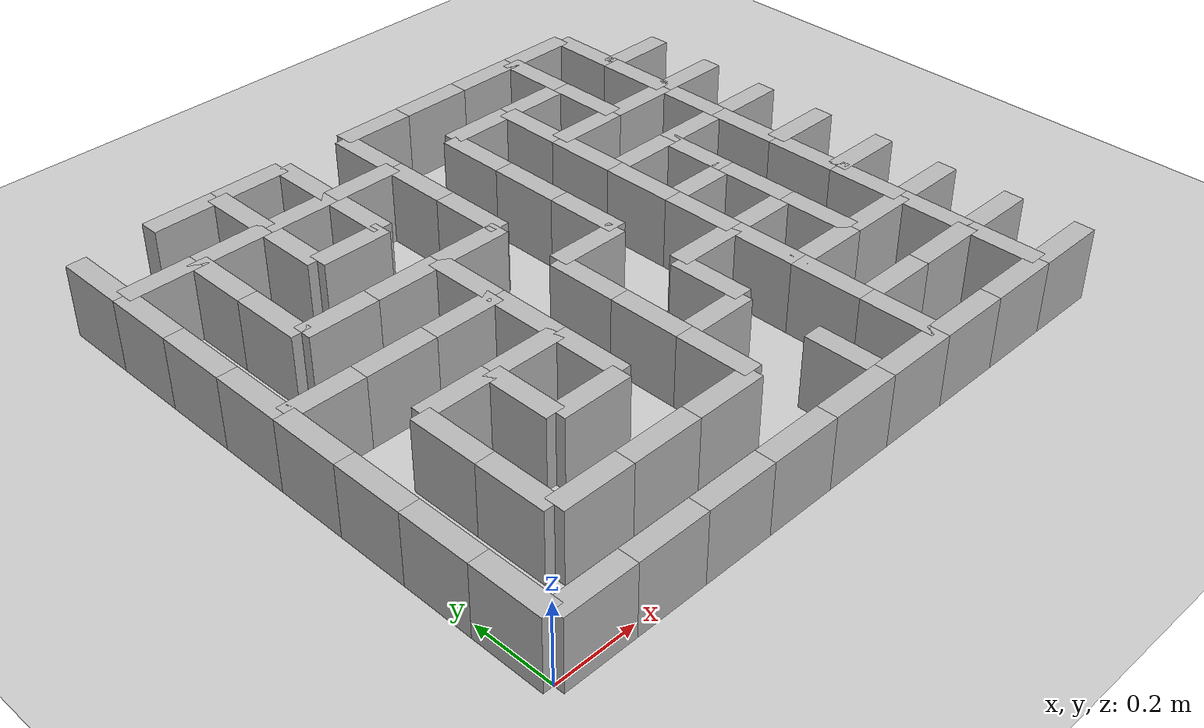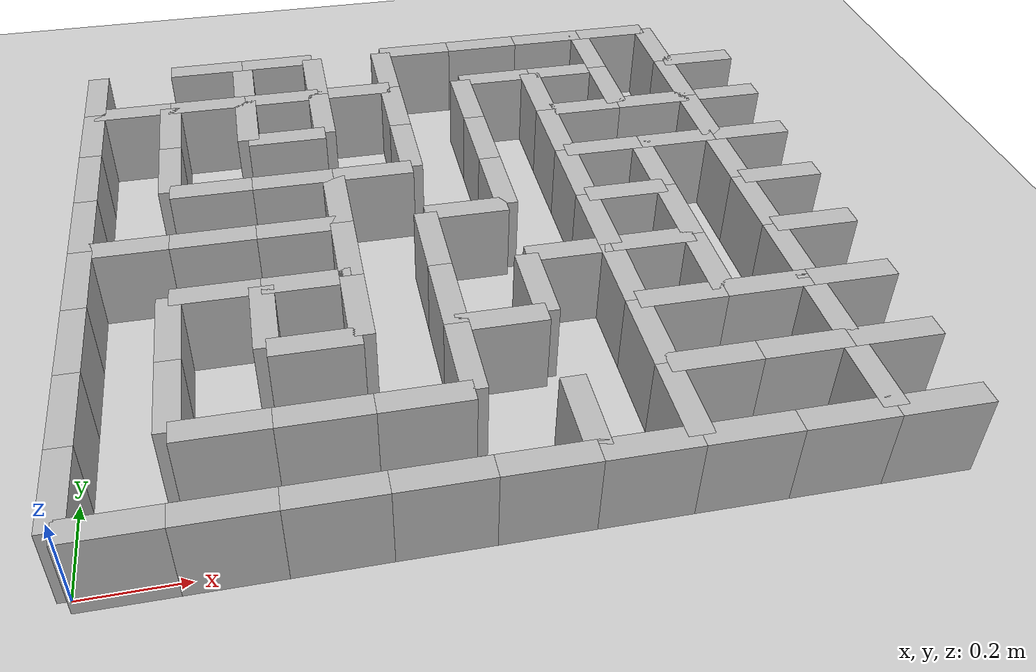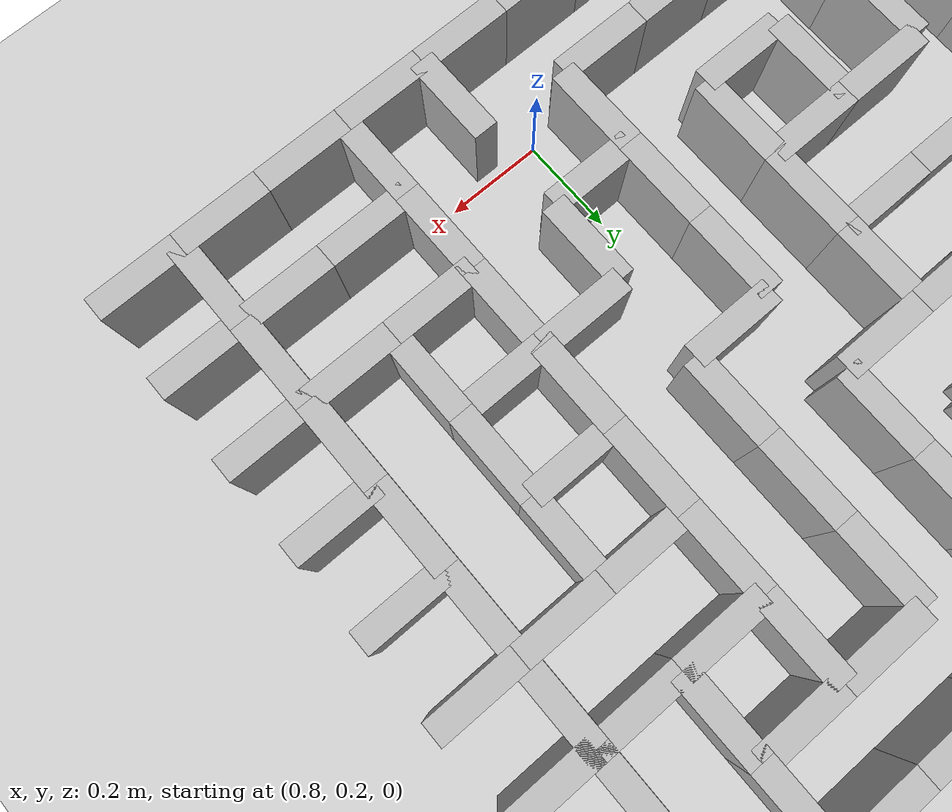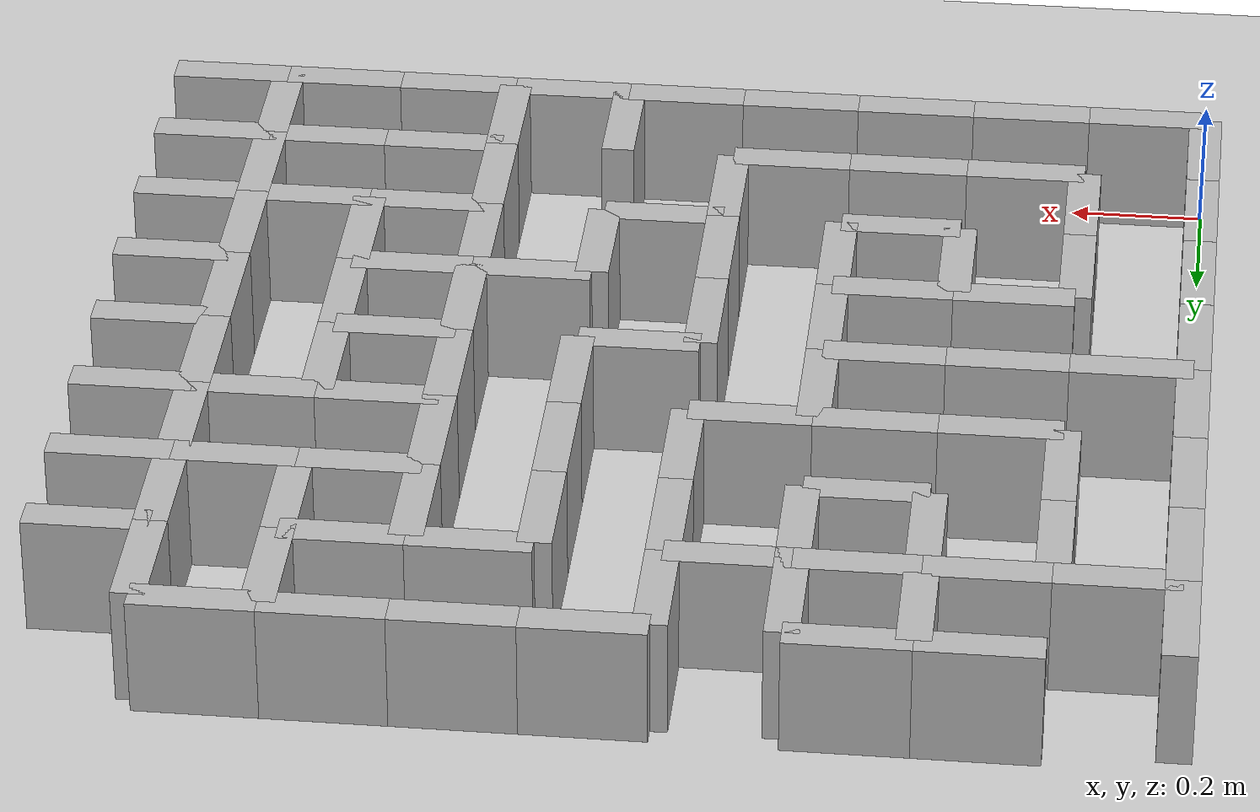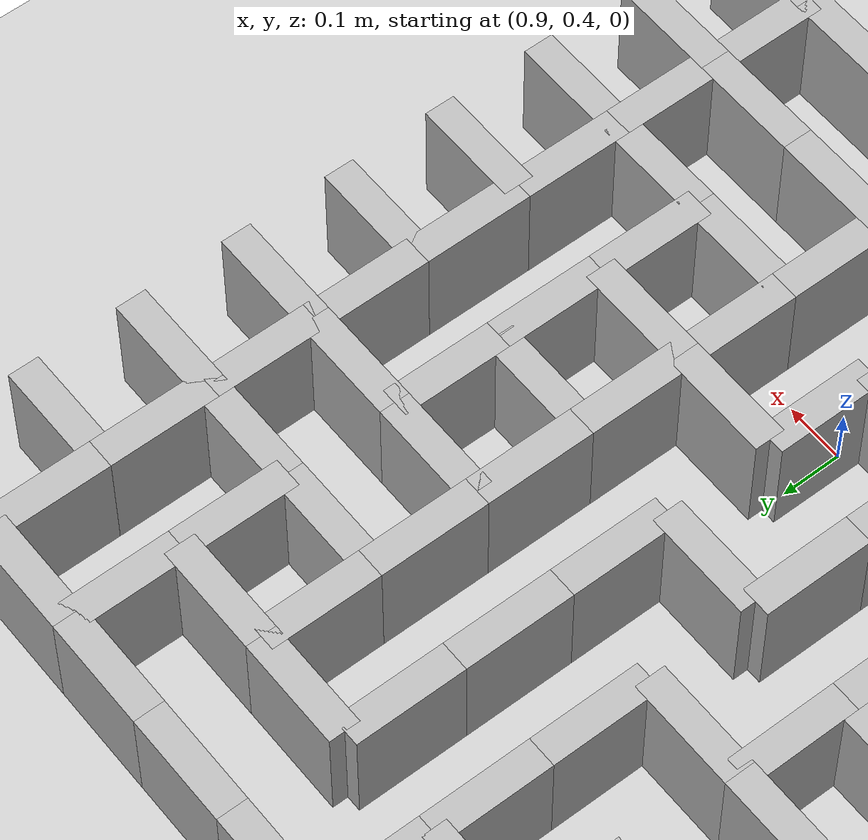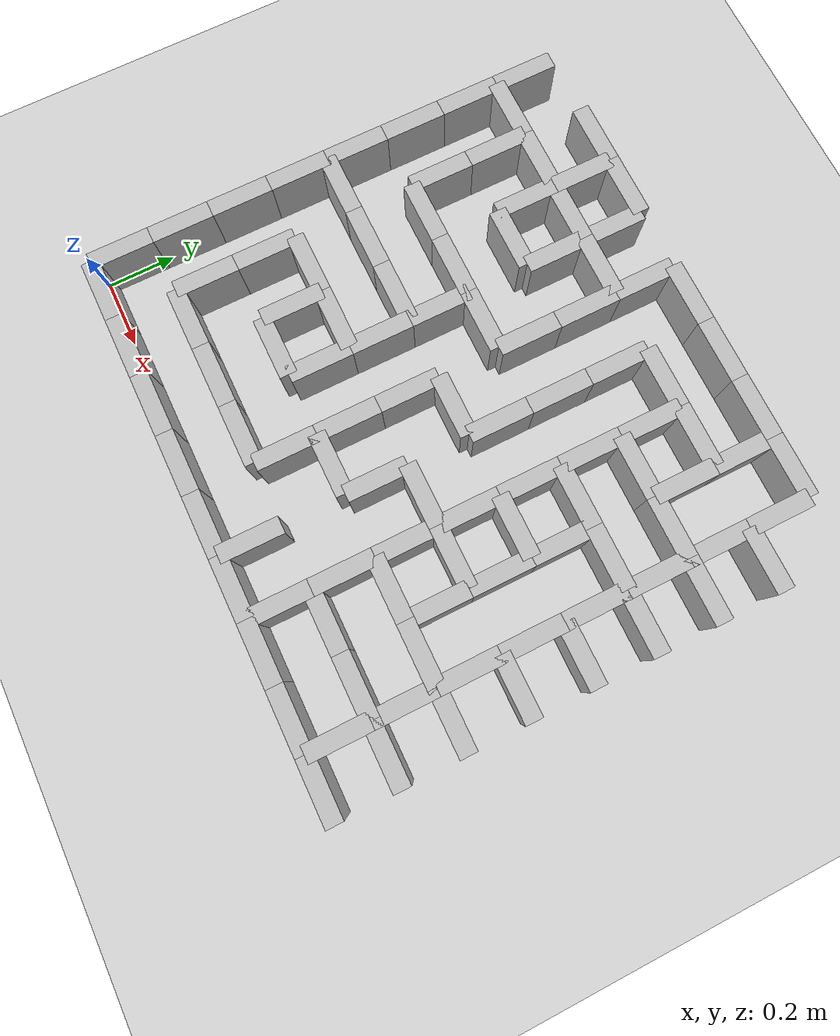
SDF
<sdf version="1.6">
 <world name="default">
  <model name="ground_plane">
   <static>1</static>
   <link name="link">
    <collision name="collision">
     <geometry><plane><normal>0 0 1</normal><size>100 100</size></plane></geometry>
     <surface><friction><ode><mu>100</mu><mu2>50</mu2></ode></friction></surface>
    </collision>
    <visual name="visual">
     <cast_shadows>0</cast_shadows>
     <geometry><plane><normal>0 0 1</normal><size>100 100</size></plane></geometry>
     <material>
      <script><uri>file://media/materials/scripts/gazebo.material</uri><name>Gazebo/Grey</name></script>
     </material>
    </visual>
   </link>
  </model>
  <model name="labyrinth_wall0">
   <pose>0.090000 0.000000 0.09 0 0 0.000000</pose>
   <link name="link">
    <inertial><mass>3.0</mass></inertial>
    <collision name="collision"><geometry><box><size>0.180 0.050 0.180</size></box></geometry></collision>
    <visual name="visual"><geometry><box><size>0.180 0.050 0.180</size></box></geometry></visual>
   </link>
   <static>true</static>
  </model>
  <model name="labyrinth_wall2">
   <pose>0.000000 0.090000 0.09 0 0 1.570796</pose>
   <link name="link">
    <inertial><mass>3.0</mass></inertial>
    <collision name="collision"><geometry><box><size>0.180 0.050 0.180</size></box></geometry></collision>
    <visual name="visual"><geometry><box><size>0.180 0.050 0.180</size></box></geometry></visual>
   </link>
   <static>true</static>
  </model>
  <model name="labyrinth_wall3">
   <pose>0.270000 0.000000 0.09 0 0 0.000000</pose>
   <link name="link">
    <inertial><mass>3.0</mass></inertial>
    <collision name="collision"><geometry><box><size>0.180 0.050 0.180</size></box></geometry></collision>
    <visual name="visual"><geometry><box><size>0.180 0.050 0.180</size></box></geometry></visual>
   </link>
   <static>true</static>
  </model>
  <model name="labyrinth_wall5">
   <pose>0.450000 0.000000 0.09 0 0 0.000000</pose>
   <link name="link">
    <inertial><mass>3.0</mass></inertial>
    <collision name="collision"><geometry><box><size>0.180 0.050 0.180</size></box></geometry></collision>
    <visual name="visual"><geometry><box><size>0.180 0.050 0.180</size></box></geometry></visual>
   </link>
   <static>true</static>
  </model>
  <model name="labyrinth_wall7">
   <pose>0.630000 0.000000 0.09 0 0 0.000000</pose>
   <link name="link">
    <inertial><mass>3.0</mass></inertial>
    <collision name="collision"><geometry><box><size>0.180 0.050 0.180</size></box></geometry></collision>
    <visual name="visual"><geometry><box><size>0.180 0.050 0.180</size></box></geometry></visual>
   </link>
   <static>true</static>
  </model>
  <model name="labyrinth_wall9">
   <pose>0.810000 0.000000 0.09 0 0 0.000000</pose>
   <link name="link">
    <inertial><mass>3.0</mass></inertial>
    <collision name="collision"><geometry><box><size>0.180 0.050 0.180</size></box></geometry></collision>
    <visual name="visual"><geometry><box><size>0.180 0.050 0.180</size></box></geometry></visual>
   </link>
   <static>true</static>
  </model>
  <model name="labyrinth_wall10">
   <pose>0.900000 0.090000 0.09 0 0 1.570796</pose>
   <link name="link">
    <inertial><mass>3.0</mass></inertial>
    <collision name="collision"><geometry><box><size>0.180 0.050 0.180</size></box></geometry></collision>
    <visual name="visual"><geometry><box><size>0.180 0.050 0.180</size></box></geometry></visual>
   </link>
   <static>true</static>
  </model>
  <model name="labyrinth_wall11">
   <pose>0.990000 0.000000 0.09 0 0 0.000000</pose>
   <link name="link">
    <inertial><mass>3.0</mass></inertial>
    <collision name="collision"><geometry><box><size>0.180 0.050 0.180</size></box></geometry></collision>
    <visual name="visual"><geometry><box><size>0.180 0.050 0.180</size></box></geometry></visual>
   </link>
   <static>true</static>
  </model>
  <model name="labyrinth_wall12">
   <pose>1.080000 0.090000 0.09 0 0 1.570796</pose>
   <link name="link">
    <inertial><mass>3.0</mass></inertial>
    <collision name="collision"><geometry><box><size>0.180 0.050 0.180</size></box></geometry></collision>
    <visual name="visual"><geometry><box><size>0.180 0.050 0.180</size></box></geometry></visual>
   </link>
   <static>true</static>
  </model>
  <model name="labyrinth_wall13">
   <pose>1.170000 0.000000 0.09 0 0 0.000000</pose>
   <link name="link">
    <inertial><mass>3.0</mass></inertial>
    <collision name="collision"><geometry><box><size>0.180 0.050 0.180</size></box></geometry></collision>
    <visual name="visual"><geometry><box><size>0.180 0.050 0.180</size></box></geometry></visual>
   </link>
   <static>true</static>
  </model>
  <model name="labyrinth_wall15">
   <pose>1.350000 0.000000 0.09 0 0 0.000000</pose>
   <link name="link">
    <inertial><mass>3.0</mass></inertial>
    <collision name="collision"><geometry><box><size>0.180 0.050 0.180</size></box></geometry></collision>
    <visual name="visual"><geometry><box><size>0.180 0.050 0.180</size></box></geometry></visual>
   </link>
   <static>true</static>
  </model>
  <model name="labyrinth_wall16">
   <pose>1.440000 0.090000 0.09 0 0 1.570796</pose>
   <link name="link">
    <inertial><mass>3.0</mass></inertial>
    <collision name="collision"><geometry><box><size>0.180 0.050 0.180</size></box></geometry></collision>
    <visual name="visual"><geometry><box><size>0.180 0.050 0.180</size></box></geometry></visual>
   </link>
   <static>true</static>
  </model>
  <model name="labyrinth_wall17">
   <pose>1.530000 0.000000 0.09 0 0 0.000000</pose>
   <link name="link">
    <inertial><mass>3.0</mass></inertial>
    <collision name="collision"><geometry><box><size>0.180 0.050 0.180</size></box></geometry></collision>
    <visual name="visual"><geometry><box><size>0.180 0.050 0.180</size></box></geometry></visual>
   </link>
   <static>true</static>
  </model>
  <model name="labyrinth_wall34">
   <pose>0.180000 0.270000 0.09 0 0 1.570796</pose>
   <link name="link">
    <inertial><mass>3.0</mass></inertial>
    <collision name="collision"><geometry><box><size>0.180 0.050 0.180</size></box></geometry></collision>
    <visual name="visual"><geometry><box><size>0.180 0.050 0.180</size></box></geometry></visual>
   </link>
   <static>true</static>
  </model>
  <model name="labyrinth_wall35">
   <pose>0.000000 0.270000 0.09 0 0 1.570796</pose>
   <link name="link">
    <inertial><mass>3.0</mass></inertial>
    <collision name="collision"><geometry><box><size>0.180 0.050 0.180</size></box></geometry></collision>
    <visual name="visual"><geometry><box><size>0.180 0.050 0.180</size></box></geometry></visual>
   </link>
   <static>true</static>
  </model>
  <model name="labyrinth_wall36">
   <pose>0.270000 0.180000 0.09 0 0 0.000000</pose>
   <link name="link">
    <inertial><mass>3.0</mass></inertial>
    <collision name="collision"><geometry><box><size>0.180 0.050 0.180</size></box></geometry></collision>
    <visual name="visual"><geometry><box><size>0.180 0.050 0.180</size></box></geometry></visual>
   </link>
   <static>true</static>
  </model>
  <model name="labyrinth_wall38">
   <pose>0.450000 0.180000 0.09 0 0 0.000000</pose>
   <link name="link">
    <inertial><mass>3.0</mass></inertial>
    <collision name="collision"><geometry><box><size>0.180 0.050 0.180</size></box></geometry></collision>
    <visual name="visual"><geometry><box><size>0.180 0.050 0.180</size></box></geometry></visual>
   </link>
   <static>true</static>
  </model>
  <model name="labyrinth_wall40">
   <pose>0.630000 0.180000 0.09 0 0 0.000000</pose>
   <link name="link">
    <inertial><mass>3.0</mass></inertial>
    <collision name="collision"><geometry><box><size>0.180 0.050 0.180</size></box></geometry></collision>
    <visual name="visual"><geometry><box><size>0.180 0.050 0.180</size></box></geometry></visual>
   </link>
   <static>true</static>
  </model>
  <model name="labyrinth_wall41">
   <pose>0.720000 0.270000 0.09 0 0 1.570796</pose>
   <link name="link">
    <inertial><mass>3.0</mass></inertial>
    <collision name="collision"><geometry><box><size>0.180 0.050 0.180</size></box></geometry></collision>
    <visual name="visual"><geometry><box><size>0.180 0.050 0.180</size></box></geometry></visual>
   </link>
   <static>true</static>
  </model>
  <model name="labyrinth_wall45">
   <pose>1.080000 0.270000 0.09 0 0 1.570796</pose>
   <link name="link">
    <inertial><mass>3.0</mass></inertial>
    <collision name="collision"><geometry><box><size>0.180 0.050 0.180</size></box></geometry></collision>
    <visual name="visual"><geometry><box><size>0.180 0.050 0.180</size></box></geometry></visual>
   </link>
   <static>true</static>
  </model>
  <model name="labyrinth_wall46">
   <pose>1.170000 0.180000 0.09 0 0 0.000000</pose>
   <link name="link">
    <inertial><mass>3.0</mass></inertial>
    <collision name="collision"><geometry><box><size>0.180 0.050 0.180</size></box></geometry></collision>
    <visual name="visual"><geometry><box><size>0.180 0.050 0.180</size></box></geometry></visual>
   </link>
   <static>true</static>
  </model>
  <model name="labyrinth_wall48">
   <pose>1.350000 0.180000 0.09 0 0 0.000000</pose>
   <link name="link">
    <inertial><mass>3.0</mass></inertial>
    <collision name="collision"><geometry><box><size>0.180 0.050 0.180</size></box></geometry></collision>
    <visual name="visual"><geometry><box><size>0.180 0.050 0.180</size></box></geometry></visual>
   </link>
   <static>true</static>
  </model>
  <model name="labyrinth_wall49">
   <pose>1.440000 0.270000 0.09 0 0 1.570796</pose>
   <link name="link">
    <inertial><mass>3.0</mass></inertial>
    <collision name="collision"><geometry><box><size>0.180 0.050 0.180</size></box></geometry></collision>
    <visual name="visual"><geometry><box><size>0.180 0.050 0.180</size></box></geometry></visual>
   </link>
   <static>true</static>
  </model>
  <model name="labyrinth_wall50">
   <pose>1.530000 0.180000 0.09 0 0 0.000000</pose>
   <link name="link">
    <inertial><mass>3.0</mass></inertial>
    <collision name="collision"><geometry><box><size>0.180 0.050 0.180</size></box></geometry></collision>
    <visual name="visual"><geometry><box><size>0.180 0.050 0.180</size></box></geometry></visual>
   </link>
   <static>true</static>
  </model>
  <model name="labyrinth_wall67">
   <pose>0.180000 0.450000 0.09 0 0 1.570796</pose>
   <link name="link">
    <inertial><mass>3.0</mass></inertial>
    <collision name="collision"><geometry><box><size>0.180 0.050 0.180</size></box></geometry></collision>
    <visual name="visual"><geometry><box><size>0.180 0.050 0.180</size></box></geometry></visual>
   </link>
   <static>true</static>
  </model>
  <model name="labyrinth_wall68">
   <pose>0.000000 0.450000 0.09 0 0 1.570796</pose>
   <link name="link">
    <inertial><mass>3.0</mass></inertial>
    <collision name="collision"><geometry><box><size>0.180 0.050 0.180</size></box></geometry></collision>
    <visual name="visual"><geometry><box><size>0.180 0.050 0.180</size></box></geometry></visual>
   </link>
   <static>true</static>
  </model>
  <model name="labyrinth_wall70">
   <pose>0.360000 0.450000 0.09 0 0 1.570796</pose>
   <link name="link">
    <inertial><mass>3.0</mass></inertial>
    <collision name="collision"><geometry><box><size>0.180 0.050 0.180</size></box></geometry></collision>
    <visual name="visual"><geometry><box><size>0.180 0.050 0.180</size></box></geometry></visual>
   </link>
   <static>true</static>
  </model>
  <model name="labyrinth_wall71">
   <pose>0.450000 0.360000 0.09 0 0 0.000000</pose>
   <link name="link">
    <inertial><mass>3.0</mass></inertial>
    <collision name="collision"><geometry><box><size>0.180 0.050 0.180</size></box></geometry></collision>
    <visual name="visual"><geometry><box><size>0.180 0.050 0.180</size></box></geometry></visual>
   </link>
   <static>true</static>
  </model>
  <model name="labyrinth_wall72">
   <pose>0.540000 0.450000 0.09 0 0 1.570796</pose>
   <link name="link">
    <inertial><mass>3.0</mass></inertial>
    <collision name="collision"><geometry><box><size>0.180 0.050 0.180</size></box></geometry></collision>
    <visual name="visual"><geometry><box><size>0.180 0.050 0.180</size></box></geometry></visual>
   </link>
   <static>true</static>
  </model>
  <model name="labyrinth_wall74">
   <pose>0.720000 0.450000 0.09 0 0 1.570796</pose>
   <link name="link">
    <inertial><mass>3.0</mass></inertial>
    <collision name="collision"><geometry><box><size>0.180 0.050 0.180</size></box></geometry></collision>
    <visual name="visual"><geometry><box><size>0.180 0.050 0.180</size></box></geometry></visual>
   </link>
   <static>true</static>
  </model>
  <model name="labyrinth_wall75">
   <pose>0.810000 0.360000 0.09 0 0 0.000000</pose>
   <link name="link">
    <inertial><mass>3.0</mass></inertial>
    <collision name="collision"><geometry><box><size>0.180 0.050 0.180</size></box></geometry></collision>
    <visual name="visual"><geometry><box><size>0.180 0.050 0.180</size></box></geometry></visual>
   </link>
   <static>true</static>
  </model>
  <model name="labyrinth_wall76">
   <pose>0.900000 0.450000 0.09 0 0 1.570796</pose>
   <link name="link">
    <inertial><mass>3.0</mass></inertial>
    <collision name="collision"><geometry><box><size>0.180 0.050 0.180</size></box></geometry></collision>
    <visual name="visual"><geometry><box><size>0.180 0.050 0.180</size></box></geometry></visual>
   </link>
   <static>true</static>
  </model>
  <model name="labyrinth_wall78">
   <pose>1.080000 0.450000 0.09 0 0 1.570796</pose>
   <link name="link">
    <inertial><mass>3.0</mass></inertial>
    <collision name="collision"><geometry><box><size>0.180 0.050 0.180</size></box></geometry></collision>
    <visual name="visual"><geometry><box><size>0.180 0.050 0.180</size></box></geometry></visual>
   </link>
   <static>true</static>
  </model>
  <model name="labyrinth_wall79">
   <pose>1.170000 0.360000 0.09 0 0 0.000000</pose>
   <link name="link">
    <inertial><mass>3.0</mass></inertial>
    <collision name="collision"><geometry><box><size>0.180 0.050 0.180</size></box></geometry></collision>
    <visual name="visual"><geometry><box><size>0.180 0.050 0.180</size></box></geometry></visual>
   </link>
   <static>true</static>
  </model>
  <model name="labyrinth_wall80">
   <pose>1.260000 0.450000 0.09 0 0 1.570796</pose>
   <link name="link">
    <inertial><mass>3.0</mass></inertial>
    <collision name="collision"><geometry><box><size>0.180 0.050 0.180</size></box></geometry></collision>
    <visual name="visual"><geometry><box><size>0.180 0.050 0.180</size></box></geometry></visual>
   </link>
   <static>true</static>
  </model>
  <model name="labyrinth_wall81">
   <pose>1.350000 0.360000 0.09 0 0 0.000000</pose>
   <link name="link">
    <inertial><mass>3.0</mass></inertial>
    <collision name="collision"><geometry><box><size>0.180 0.050 0.180</size></box></geometry></collision>
    <visual name="visual"><geometry><box><size>0.180 0.050 0.180</size></box></geometry></visual>
   </link>
   <static>true</static>
  </model>
  <model name="labyrinth_wall82">
   <pose>1.440000 0.450000 0.09 0 0 1.570796</pose>
   <link name="link">
    <inertial><mass>3.0</mass></inertial>
    <collision name="collision"><geometry><box><size>0.180 0.050 0.180</size></box></geometry></collision>
    <visual name="visual"><geometry><box><size>0.180 0.050 0.180</size></box></geometry></visual>
   </link>
   <static>true</static>
  </model>
  <model name="labyrinth_wall83">
   <pose>1.530000 0.360000 0.09 0 0 0.000000</pose>
   <link name="link">
    <inertial><mass>3.0</mass></inertial>
    <collision name="collision"><geometry><box><size>0.180 0.050 0.180</size></box></geometry></collision>
    <visual name="visual"><geometry><box><size>0.180 0.050 0.180</size></box></geometry></visual>
   </link>
   <static>true</static>
  </model>
  <model name="labyrinth_wall101">
   <pose>0.000000 0.630000 0.09 0 0 1.570796</pose>
   <link name="link">
    <inertial><mass>3.0</mass></inertial>
    <collision name="collision"><geometry><box><size>0.180 0.050 0.180</size></box></geometry></collision>
    <visual name="visual"><geometry><box><size>0.180 0.050 0.180</size></box></geometry></visual>
   </link>
   <static>true</static>
  </model>
  <model name="labyrinth_wall102">
   <pose>0.270000 0.540000 0.09 0 0 0.000000</pose>
   <link name="link">
    <inertial><mass>3.0</mass></inertial>
    <collision name="collision"><geometry><box><size>0.180 0.050 0.180</size></box></geometry></collision>
    <visual name="visual"><geometry><box><size>0.180 0.050 0.180</size></box></geometry></visual>
   </link>
   <static>true</static>
  </model>
  <model name="labyrinth_wall104">
   <pose>0.450000 0.540000 0.09 0 0 0.000000</pose>
   <link name="link">
    <inertial><mass>3.0</mass></inertial>
    <collision name="collision"><geometry><box><size>0.180 0.050 0.180</size></box></geometry></collision>
    <visual name="visual"><geometry><box><size>0.180 0.050 0.180</size></box></geometry></visual>
   </link>
   <static>true</static>
  </model>
  <model name="labyrinth_wall105">
   <pose>0.540000 0.630000 0.09 0 0 1.570796</pose>
   <link name="link">
    <inertial><mass>3.0</mass></inertial>
    <collision name="collision"><geometry><box><size>0.180 0.050 0.180</size></box></geometry></collision>
    <visual name="visual"><geometry><box><size>0.180 0.050 0.180</size></box></geometry></visual>
   </link>
   <static>true</static>
  </model>
  <model name="labyrinth_wall107">
   <pose>0.720000 0.630000 0.09 0 0 1.570796</pose>
   <link name="link">
    <inertial><mass>3.0</mass></inertial>
    <collision name="collision"><geometry><box><size>0.180 0.050 0.180</size></box></geometry></collision>
    <visual name="visual"><geometry><box><size>0.180 0.050 0.180</size></box></geometry></visual>
   </link>
   <static>true</static>
  </model>
  <model name="labyrinth_wall110">
   <pose>0.990000 0.540000 0.09 0 0 0.000000</pose>
   <link name="link">
    <inertial><mass>3.0</mass></inertial>
    <collision name="collision"><geometry><box><size>0.180 0.050 0.180</size></box></geometry></collision>
    <visual name="visual"><geometry><box><size>0.180 0.050 0.180</size></box></geometry></visual>
   </link>
   <static>true</static>
  </model>
  <model name="labyrinth_wall111">
   <pose>1.080000 0.630000 0.09 0 0 1.570796</pose>
   <link name="link">
    <inertial><mass>3.0</mass></inertial>
    <collision name="collision"><geometry><box><size>0.180 0.050 0.180</size></box></geometry></collision>
    <visual name="visual"><geometry><box><size>0.180 0.050 0.180</size></box></geometry></visual>
   </link>
   <static>true</static>
  </model>
  <model name="labyrinth_wall112">
   <pose>1.170000 0.540000 0.09 0 0 0.000000</pose>
   <link name="link">
    <inertial><mass>3.0</mass></inertial>
    <collision name="collision"><geometry><box><size>0.180 0.050 0.180</size></box></geometry></collision>
    <visual name="visual"><geometry><box><size>0.180 0.050 0.180</size></box></geometry></visual>
   </link>
   <static>true</static>
  </model>
  <model name="labyrinth_wall113">
   <pose>1.260000 0.630000 0.09 0 0 1.570796</pose>
   <link name="link">
    <inertial><mass>3.0</mass></inertial>
    <collision name="collision"><geometry><box><size>0.180 0.050 0.180</size></box></geometry></collision>
    <visual name="visual"><geometry><box><size>0.180 0.050 0.180</size></box></geometry></visual>
   </link>
   <static>true</static>
  </model>
  <model name="labyrinth_wall115">
   <pose>1.440000 0.630000 0.09 0 0 1.570796</pose>
   <link name="link">
    <inertial><mass>3.0</mass></inertial>
    <collision name="collision"><geometry><box><size>0.180 0.050 0.180</size></box></geometry></collision>
    <visual name="visual"><geometry><box><size>0.180 0.050 0.180</size></box></geometry></visual>
   </link>
   <static>true</static>
  </model>
  <model name="labyrinth_wall116">
   <pose>1.530000 0.540000 0.09 0 0 0.000000</pose>
   <link name="link">
    <inertial><mass>3.0</mass></inertial>
    <collision name="collision"><geometry><box><size>0.180 0.050 0.180</size></box></geometry></collision>
    <visual name="visual"><geometry><box><size>0.180 0.050 0.180</size></box></geometry></visual>
   </link>
   <static>true</static>
  </model>
  <model name="labyrinth_wall132">
   <pose>0.090000 0.720000 0.09 0 0 0.000000</pose>
   <link name="link">
    <inertial><mass>3.0</mass></inertial>
    <collision name="collision"><geometry><box><size>0.180 0.050 0.180</size></box></geometry></collision>
    <visual name="visual"><geometry><box><size>0.180 0.050 0.180</size></box></geometry></visual>
   </link>
   <static>true</static>
  </model>
  <model name="labyrinth_wall134">
   <pose>0.000000 0.810000 0.09 0 0 1.570796</pose>
   <link name="link">
    <inertial><mass>3.0</mass></inertial>
    <collision name="collision"><geometry><box><size>0.180 0.050 0.180</size></box></geometry></collision>
    <visual name="visual"><geometry><box><size>0.180 0.050 0.180</size></box></geometry></visual>
   </link>
   <static>true</static>
  </model>
  <model name="labyrinth_wall135">
   <pose>0.270000 0.720000 0.09 0 0 0.000000</pose>
   <link name="link">
    <inertial><mass>3.0</mass></inertial>
    <collision name="collision"><geometry><box><size>0.180 0.050 0.180</size></box></geometry></collision>
    <visual name="visual"><geometry><box><size>0.180 0.050 0.180</size></box></geometry></visual>
   </link>
   <static>true</static>
  </model>
  <model name="labyrinth_wall137">
   <pose>0.450000 0.720000 0.09 0 0 0.000000</pose>
   <link name="link">
    <inertial><mass>3.0</mass></inertial>
    <collision name="collision"><geometry><box><size>0.180 0.050 0.180</size></box></geometry></collision>
    <visual name="visual"><geometry><box><size>0.180 0.050 0.180</size></box></geometry></visual>
   </link>
   <static>true</static>
  </model>
  <model name="labyrinth_wall138">
   <pose>0.540000 0.810000 0.09 0 0 1.570796</pose>
   <link name="link">
    <inertial><mass>3.0</mass></inertial>
    <collision name="collision"><geometry><box><size>0.180 0.050 0.180</size></box></geometry></collision>
    <visual name="visual"><geometry><box><size>0.180 0.050 0.180</size></box></geometry></visual>
   </link>
   <static>true</static>
  </model>
  <model name="labyrinth_wall141">
   <pose>0.810000 0.720000 0.09 0 0 0.000000</pose>
   <link name="link">
    <inertial><mass>3.0</mass></inertial>
    <collision name="collision"><geometry><box><size>0.180 0.050 0.180</size></box></geometry></collision>
    <visual name="visual"><geometry><box><size>0.180 0.050 0.180</size></box></geometry></visual>
   </link>
   <static>true</static>
  </model>
  <model name="labyrinth_wall142">
   <pose>0.900000 0.810000 0.09 0 0 1.570796</pose>
   <link name="link">
    <inertial><mass>3.0</mass></inertial>
    <collision name="collision"><geometry><box><size>0.180 0.050 0.180</size></box></geometry></collision>
    <visual name="visual"><geometry><box><size>0.180 0.050 0.180</size></box></geometry></visual>
   </link>
   <static>true</static>
  </model>
  <model name="labyrinth_wall144">
   <pose>1.080000 0.810000 0.09 0 0 1.570796</pose>
   <link name="link">
    <inertial><mass>3.0</mass></inertial>
    <collision name="collision"><geometry><box><size>0.180 0.050 0.180</size></box></geometry></collision>
    <visual name="visual"><geometry><box><size>0.180 0.050 0.180</size></box></geometry></visual>
   </link>
   <static>true</static>
  </model>
  <model name="labyrinth_wall145">
   <pose>1.170000 0.720000 0.09 0 0 0.000000</pose>
   <link name="link">
    <inertial><mass>3.0</mass></inertial>
    <collision name="collision"><geometry><box><size>0.180 0.050 0.180</size></box></geometry></collision>
    <visual name="visual"><geometry><box><size>0.180 0.050 0.180</size></box></geometry></visual>
   </link>
   <static>true</static>
  </model>
  <model name="labyrinth_wall146">
   <pose>1.260000 0.810000 0.09 0 0 1.570796</pose>
   <link name="link">
    <inertial><mass>3.0</mass></inertial>
    <collision name="collision"><geometry><box><size>0.180 0.050 0.180</size></box></geometry></collision>
    <visual name="visual"><geometry><box><size>0.180 0.050 0.180</size></box></geometry></visual>
   </link>
   <static>true</static>
  </model>
  <model name="labyrinth_wall148">
   <pose>1.440000 0.810000 0.09 0 0 1.570796</pose>
   <link name="link">
    <inertial><mass>3.0</mass></inertial>
    <collision name="collision"><geometry><box><size>0.180 0.050 0.180</size></box></geometry></collision>
    <visual name="visual"><geometry><box><size>0.180 0.050 0.180</size></box></geometry></visual>
   </link>
   <static>true</static>
  </model>
  <model name="labyrinth_wall149">
   <pose>1.530000 0.720000 0.09 0 0 0.000000</pose>
   <link name="link">
    <inertial><mass>3.0</mass></inertial>
    <collision name="collision"><geometry><box><size>0.180 0.050 0.180</size></box></geometry></collision>
    <visual name="visual"><geometry><box><size>0.180 0.050 0.180</size></box></geometry></visual>
   </link>
   <static>true</static>
  </model>
  <model name="labyrinth_wall166">
   <pose>0.180000 0.990000 0.09 0 0 1.570796</pose>
   <link name="link">
    <inertial><mass>3.0</mass></inertial>
    <collision name="collision"><geometry><box><size>0.180 0.050 0.180</size></box></geometry></collision>
    <visual name="visual"><geometry><box><size>0.180 0.050 0.180</size></box></geometry></visual>
   </link>
   <static>true</static>
  </model>
  <model name="labyrinth_wall167">
   <pose>0.000000 0.990000 0.09 0 0 1.570796</pose>
   <link name="link">
    <inertial><mass>3.0</mass></inertial>
    <collision name="collision"><geometry><box><size>0.180 0.050 0.180</size></box></geometry></collision>
    <visual name="visual"><geometry><box><size>0.180 0.050 0.180</size></box></geometry></visual>
   </link>
   <static>true</static>
  </model>
  <model name="labyrinth_wall168">
   <pose>0.270000 0.900000 0.09 0 0 0.000000</pose>
   <link name="link">
    <inertial><mass>3.0</mass></inertial>
    <collision name="collision"><geometry><box><size>0.180 0.050 0.180</size></box></geometry></collision>
    <visual name="visual"><geometry><box><size>0.180 0.050 0.180</size></box></geometry></visual>
   </link>
   <static>true</static>
  </model>
  <model name="labyrinth_wall170">
   <pose>0.450000 0.900000 0.09 0 0 0.000000</pose>
   <link name="link">
    <inertial><mass>3.0</mass></inertial>
    <collision name="collision"><geometry><box><size>0.180 0.050 0.180</size></box></geometry></collision>
    <visual name="visual"><geometry><box><size>0.180 0.050 0.180</size></box></geometry></visual>
   </link>
   <static>true</static>
  </model>
  <model name="labyrinth_wall172">
   <pose>0.630000 0.900000 0.09 0 0 0.000000</pose>
   <link name="link">
    <inertial><mass>3.0</mass></inertial>
    <collision name="collision"><geometry><box><size>0.180 0.050 0.180</size></box></geometry></collision>
    <visual name="visual"><geometry><box><size>0.180 0.050 0.180</size></box></geometry></visual>
   </link>
   <static>true</static>
  </model>
  <model name="labyrinth_wall173">
   <pose>0.720000 0.990000 0.09 0 0 1.570796</pose>
   <link name="link">
    <inertial><mass>3.0</mass></inertial>
    <collision name="collision"><geometry><box><size>0.180 0.050 0.180</size></box></geometry></collision>
    <visual name="visual"><geometry><box><size>0.180 0.050 0.180</size></box></geometry></visual>
   </link>
   <static>true</static>
  </model>
  <model name="labyrinth_wall175">
   <pose>0.900000 0.990000 0.09 0 0 1.570796</pose>
   <link name="link">
    <inertial><mass>3.0</mass></inertial>
    <collision name="collision"><geometry><box><size>0.180 0.050 0.180</size></box></geometry></collision>
    <visual name="visual"><geometry><box><size>0.180 0.050 0.180</size></box></geometry></visual>
   </link>
   <static>true</static>
  </model>
  <model name="labyrinth_wall177">
   <pose>1.080000 0.990000 0.09 0 0 1.570796</pose>
   <link name="link">
    <inertial><mass>3.0</mass></inertial>
    <collision name="collision"><geometry><box><size>0.180 0.050 0.180</size></box></geometry></collision>
    <visual name="visual"><geometry><box><size>0.180 0.050 0.180</size></box></geometry></visual>
   </link>
   <static>true</static>
  </model>
  <model name="labyrinth_wall178">
   <pose>1.170000 0.900000 0.09 0 0 0.000000</pose>
   <link name="link">
    <inertial><mass>3.0</mass></inertial>
    <collision name="collision"><geometry><box><size>0.180 0.050 0.180</size></box></geometry></collision>
    <visual name="visual"><geometry><box><size>0.180 0.050 0.180</size></box></geometry></visual>
   </link>
   <static>true</static>
  </model>
  <model name="labyrinth_wall180">
   <pose>1.350000 0.900000 0.09 0 0 0.000000</pose>
   <link name="link">
    <inertial><mass>3.0</mass></inertial>
    <collision name="collision"><geometry><box><size>0.180 0.050 0.180</size></box></geometry></collision>
    <visual name="visual"><geometry><box><size>0.180 0.050 0.180</size></box></geometry></visual>
   </link>
   <static>true</static>
  </model>
  <model name="labyrinth_wall181">
   <pose>1.440000 0.990000 0.09 0 0 1.570796</pose>
   <link name="link">
    <inertial><mass>3.0</mass></inertial>
    <collision name="collision"><geometry><box><size>0.180 0.050 0.180</size></box></geometry></collision>
    <visual name="visual"><geometry><box><size>0.180 0.050 0.180</size></box></geometry></visual>
   </link>
   <static>true</static>
  </model>
  <model name="labyrinth_wall182">
   <pose>1.530000 0.900000 0.09 0 0 0.000000</pose>
   <link name="link">
    <inertial><mass>3.0</mass></inertial>
    <collision name="collision"><geometry><box><size>0.180 0.050 0.180</size></box></geometry></collision>
    <visual name="visual"><geometry><box><size>0.180 0.050 0.180</size></box></geometry></visual>
   </link>
   <static>true</static>
  </model>
  <model name="labyrinth_wall199">
   <pose>0.180000 1.170000 0.09 0 0 1.570796</pose>
   <link name="link">
    <inertial><mass>3.0</mass></inertial>
    <collision name="collision"><geometry><box><size>0.180 0.050 0.180</size></box></geometry></collision>
    <visual name="visual"><geometry><box><size>0.180 0.050 0.180</size></box></geometry></visual>
   </link>
   <static>true</static>
  </model>
  <model name="labyrinth_wall200">
   <pose>0.000000 1.170000 0.09 0 0 1.570796</pose>
   <link name="link">
    <inertial><mass>3.0</mass></inertial>
    <collision name="collision"><geometry><box><size>0.180 0.050 0.180</size></box></geometry></collision>
    <visual name="visual"><geometry><box><size>0.180 0.050 0.180</size></box></geometry></visual>
   </link>
   <static>true</static>
  </model>
  <model name="labyrinth_wall202">
   <pose>0.360000 1.170000 0.09 0 0 1.570796</pose>
   <link name="link">
    <inertial><mass>3.0</mass></inertial>
    <collision name="collision"><geometry><box><size>0.180 0.050 0.180</size></box></geometry></collision>
    <visual name="visual"><geometry><box><size>0.180 0.050 0.180</size></box></geometry></visual>
   </link>
   <static>true</static>
  </model>
  <model name="labyrinth_wall203">
   <pose>0.450000 1.080000 0.09 0 0 0.000000</pose>
   <link name="link">
    <inertial><mass>3.0</mass></inertial>
    <collision name="collision"><geometry><box><size>0.180 0.050 0.180</size></box></geometry></collision>
    <visual name="visual"><geometry><box><size>0.180 0.050 0.180</size></box></geometry></visual>
   </link>
   <static>true</static>
  </model>
  <model name="labyrinth_wall204">
   <pose>0.540000 1.170000 0.09 0 0 1.570796</pose>
   <link name="link">
    <inertial><mass>3.0</mass></inertial>
    <collision name="collision"><geometry><box><size>0.180 0.050 0.180</size></box></geometry></collision>
    <visual name="visual"><geometry><box><size>0.180 0.050 0.180</size></box></geometry></visual>
   </link>
   <static>true</static>
  </model>
  <model name="labyrinth_wall206">
   <pose>0.720000 1.170000 0.09 0 0 1.570796</pose>
   <link name="link">
    <inertial><mass>3.0</mass></inertial>
    <collision name="collision"><geometry><box><size>0.180 0.050 0.180</size></box></geometry></collision>
    <visual name="visual"><geometry><box><size>0.180 0.050 0.180</size></box></geometry></visual>
   </link>
   <static>true</static>
  </model>
  <model name="labyrinth_wall208">
   <pose>0.900000 1.170000 0.09 0 0 1.570796</pose>
   <link name="link">
    <inertial><mass>3.0</mass></inertial>
    <collision name="collision"><geometry><box><size>0.180 0.050 0.180</size></box></geometry></collision>
    <visual name="visual"><geometry><box><size>0.180 0.050 0.180</size></box></geometry></visual>
   </link>
   <static>true</static>
  </model>
  <model name="labyrinth_wall210">
   <pose>1.080000 1.170000 0.09 0 0 1.570796</pose>
   <link name="link">
    <inertial><mass>3.0</mass></inertial>
    <collision name="collision"><geometry><box><size>0.180 0.050 0.180</size></box></geometry></collision>
    <visual name="visual"><geometry><box><size>0.180 0.050 0.180</size></box></geometry></visual>
   </link>
   <static>true</static>
  </model>
  <model name="labyrinth_wall211">
   <pose>1.170000 1.080000 0.09 0 0 0.000000</pose>
   <link name="link">
    <inertial><mass>3.0</mass></inertial>
    <collision name="collision"><geometry><box><size>0.180 0.050 0.180</size></box></geometry></collision>
    <visual name="visual"><geometry><box><size>0.180 0.050 0.180</size></box></geometry></visual>
   </link>
   <static>true</static>
  </model>
  <model name="labyrinth_wall212">
   <pose>1.260000 1.170000 0.09 0 0 1.570796</pose>
   <link name="link">
    <inertial><mass>3.0</mass></inertial>
    <collision name="collision"><geometry><box><size>0.180 0.050 0.180</size></box></geometry></collision>
    <visual name="visual"><geometry><box><size>0.180 0.050 0.180</size></box></geometry></visual>
   </link>
   <static>true</static>
  </model>
  <model name="labyrinth_wall213">
   <pose>1.350000 1.080000 0.09 0 0 0.000000</pose>
   <link name="link">
    <inertial><mass>3.0</mass></inertial>
    <collision name="collision"><geometry><box><size>0.180 0.050 0.180</size></box></geometry></collision>
    <visual name="visual"><geometry><box><size>0.180 0.050 0.180</size></box></geometry></visual>
   </link>
   <static>true</static>
  </model>
  <model name="labyrinth_wall214">
   <pose>1.440000 1.170000 0.09 0 0 1.570796</pose>
   <link name="link">
    <inertial><mass>3.0</mass></inertial>
    <collision name="collision"><geometry><box><size>0.180 0.050 0.180</size></box></geometry></collision>
    <visual name="visual"><geometry><box><size>0.180 0.050 0.180</size></box></geometry></visual>
   </link>
   <static>true</static>
  </model>
  <model name="labyrinth_wall215">
   <pose>1.530000 1.080000 0.09 0 0 0.000000</pose>
   <link name="link">
    <inertial><mass>3.0</mass></inertial>
    <collision name="collision"><geometry><box><size>0.180 0.050 0.180</size></box></geometry></collision>
    <visual name="visual"><geometry><box><size>0.180 0.050 0.180</size></box></geometry></visual>
   </link>
   <static>true</static>
  </model>
  <model name="labyrinth_wall231">
   <pose>0.090000 1.260000 0.09 0 0 0.000000</pose>
   <link name="link">
    <inertial><mass>3.0</mass></inertial>
    <collision name="collision"><geometry><box><size>0.180 0.050 0.180</size></box></geometry></collision>
    <visual name="visual"><geometry><box><size>0.180 0.050 0.180</size></box></geometry></visual>
   </link>
   <static>true</static>
  </model>
  <model name="labyrinth_wall233">
   <pose>0.000000 1.350000 0.09 0 0 1.570796</pose>
   <link name="link">
    <inertial><mass>3.0</mass></inertial>
    <collision name="collision"><geometry><box><size>0.180 0.050 0.180</size></box></geometry></collision>
    <visual name="visual"><geometry><box><size>0.180 0.050 0.180</size></box></geometry></visual>
   </link>
   <static>true</static>
  </model>
  <model name="labyrinth_wall234">
   <pose>0.270000 1.260000 0.09 0 0 0.000000</pose>
   <link name="link">
    <inertial><mass>3.0</mass></inertial>
    <collision name="collision"><geometry><box><size>0.180 0.050 0.180</size></box></geometry></collision>
    <visual name="visual"><geometry><box><size>0.180 0.050 0.180</size></box></geometry></visual>
   </link>
   <static>true</static>
  </model>
  <model name="labyrinth_wall235">
   <pose>0.360000 1.350000 0.09 0 0 1.570796</pose>
   <link name="link">
    <inertial><mass>3.0</mass></inertial>
    <collision name="collision"><geometry><box><size>0.180 0.050 0.180</size></box></geometry></collision>
    <visual name="visual"><geometry><box><size>0.180 0.050 0.180</size></box></geometry></visual>
   </link>
   <static>true</static>
  </model>
  <model name="labyrinth_wall236">
   <pose>0.450000 1.260000 0.09 0 0 0.000000</pose>
   <link name="link">
    <inertial><mass>3.0</mass></inertial>
    <collision name="collision"><geometry><box><size>0.180 0.050 0.180</size></box></geometry></collision>
    <visual name="visual"><geometry><box><size>0.180 0.050 0.180</size></box></geometry></visual>
   </link>
   <static>true</static>
  </model>
  <model name="labyrinth_wall237">
   <pose>0.540000 1.350000 0.09 0 0 1.570796</pose>
   <link name="link">
    <inertial><mass>3.0</mass></inertial>
    <collision name="collision"><geometry><box><size>0.180 0.050 0.180</size></box></geometry></collision>
    <visual name="visual"><geometry><box><size>0.180 0.050 0.180</size></box></geometry></visual>
   </link>
   <static>true</static>
  </model>
  <model name="labyrinth_wall238">
   <pose>0.630000 1.260000 0.09 0 0 0.000000</pose>
   <link name="link">
    <inertial><mass>3.0</mass></inertial>
    <collision name="collision"><geometry><box><size>0.180 0.050 0.180</size></box></geometry></collision>
    <visual name="visual"><geometry><box><size>0.180 0.050 0.180</size></box></geometry></visual>
   </link>
   <static>true</static>
  </model>
  <model name="labyrinth_wall239">
   <pose>0.720000 1.350000 0.09 0 0 1.570796</pose>
   <link name="link">
    <inertial><mass>3.0</mass></inertial>
    <collision name="collision"><geometry><box><size>0.180 0.050 0.180</size></box></geometry></collision>
    <visual name="visual"><geometry><box><size>0.180 0.050 0.180</size></box></geometry></visual>
   </link>
   <static>true</static>
  </model>
  <model name="labyrinth_wall242">
   <pose>0.990000 1.260000 0.09 0 0 0.000000</pose>
   <link name="link">
    <inertial><mass>3.0</mass></inertial>
    <collision name="collision"><geometry><box><size>0.180 0.050 0.180</size></box></geometry></collision>
    <visual name="visual"><geometry><box><size>0.180 0.050 0.180</size></box></geometry></visual>
   </link>
   <static>true</static>
  </model>
  <model name="labyrinth_wall244">
   <pose>1.170000 1.260000 0.09 0 0 0.000000</pose>
   <link name="link">
    <inertial><mass>3.0</mass></inertial>
    <collision name="collision"><geometry><box><size>0.180 0.050 0.180</size></box></geometry></collision>
    <visual name="visual"><geometry><box><size>0.180 0.050 0.180</size></box></geometry></visual>
   </link>
   <static>true</static>
  </model>
  <model name="labyrinth_wall245">
   <pose>1.260000 1.350000 0.09 0 0 1.570796</pose>
   <link name="link">
    <inertial><mass>3.0</mass></inertial>
    <collision name="collision"><geometry><box><size>0.180 0.050 0.180</size></box></geometry></collision>
    <visual name="visual"><geometry><box><size>0.180 0.050 0.180</size></box></geometry></visual>
   </link>
   <static>true</static>
  </model>
  <model name="labyrinth_wall247">
   <pose>1.440000 1.350000 0.09 0 0 1.570796</pose>
   <link name="link">
    <inertial><mass>3.0</mass></inertial>
    <collision name="collision"><geometry><box><size>0.180 0.050 0.180</size></box></geometry></collision>
    <visual name="visual"><geometry><box><size>0.180 0.050 0.180</size></box></geometry></visual>
   </link>
   <static>true</static>
  </model>
  <model name="labyrinth_wall248">
   <pose>1.530000 1.260000 0.09 0 0 0.000000</pose>
   <link name="link">
    <inertial><mass>3.0</mass></inertial>
    <collision name="collision"><geometry><box><size>0.180 0.050 0.180</size></box></geometry></collision>
    <visual name="visual"><geometry><box><size>0.180 0.050 0.180</size></box></geometry></visual>
   </link>
   <static>true</static>
  </model>
  <model name="labyrinth_wall267">
   <pose>0.270000 1.440000 0.09 0 0 0.000000</pose>
   <link name="link">
    <inertial><mass>3.0</mass></inertial>
    <collision name="collision"><geometry><box><size>0.180 0.050 0.180</size></box></geometry></collision>
    <visual name="visual"><geometry><box><size>0.180 0.050 0.180</size></box></geometry></visual>
   </link>
   <static>true</static>
  </model>
  <model name="labyrinth_wall269">
   <pose>0.450000 1.440000 0.09 0 0 0.000000</pose>
   <link name="link">
    <inertial><mass>3.0</mass></inertial>
    <collision name="collision"><geometry><box><size>0.180 0.050 0.180</size></box></geometry></collision>
    <visual name="visual"><geometry><box><size>0.180 0.050 0.180</size></box></geometry></visual>
   </link>
   <static>true</static>
  </model>
  <model name="labyrinth_wall273">
   <pose>0.810000 1.440000 0.09 0 0 0.000000</pose>
   <link name="link">
    <inertial><mass>3.0</mass></inertial>
    <collision name="collision"><geometry><box><size>0.180 0.050 0.180</size></box></geometry></collision>
    <visual name="visual"><geometry><box><size>0.180 0.050 0.180</size></box></geometry></visual>
   </link>
   <static>true</static>
  </model>
  <model name="labyrinth_wall275">
   <pose>0.990000 1.440000 0.09 0 0 0.000000</pose>
   <link name="link">
    <inertial><mass>3.0</mass></inertial>
    <collision name="collision"><geometry><box><size>0.180 0.050 0.180</size></box></geometry></collision>
    <visual name="visual"><geometry><box><size>0.180 0.050 0.180</size></box></geometry></visual>
   </link>
   <static>true</static>
  </model>
  <model name="labyrinth_wall277">
   <pose>1.170000 1.440000 0.09 0 0 0.000000</pose>
   <link name="link">
    <inertial><mass>3.0</mass></inertial>
    <collision name="collision"><geometry><box><size>0.180 0.050 0.180</size></box></geometry></collision>
    <visual name="visual"><geometry><box><size>0.180 0.050 0.180</size></box></geometry></visual>
   </link>
   <static>true</static>
  </model>
  <model name="labyrinth_wall279">
   <pose>1.350000 1.440000 0.09 0 0 0.000000</pose>
   <link name="link">
    <inertial><mass>3.0</mass></inertial>
    <collision name="collision"><geometry><box><size>0.180 0.050 0.180</size></box></geometry></collision>
    <visual name="visual"><geometry><box><size>0.180 0.050 0.180</size></box></geometry></visual>
   </link>
   <static>true</static>
  </model>
 </world>
</sdf>
